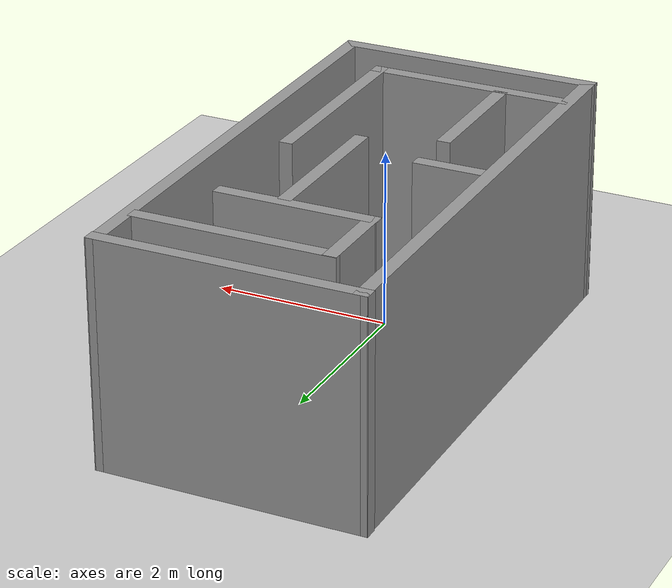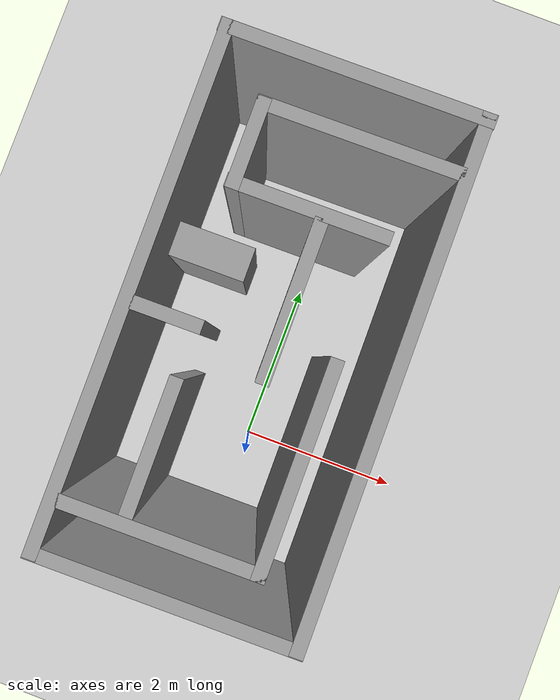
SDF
<sdf version="1.7">
 <world name="default">
  <light name="sun" type="directional">
   <pose>0 0 10 0 -0 0</pose>
   <diffuse>0.8 0.8 0.8 1</diffuse>
   <specular>0.2 0.2 0.2 1</specular>
   <attenuation>
    <range>1000</range>
    <constant>0.9</constant>
    <linear>0.01</linear>
    <quadratic>0.001</quadratic>
   </attenuation>
   <direction>-0.5 0.1 -0.9</direction>
   <spot><inner_angle>0</inner_angle><outer_angle>0</outer_angle><falloff>0</falloff></spot>
  </light>
  <model name="ground_plane">
   <static>1</static>
   <link name="link">
    <collision name="collision">
     <geometry><plane><normal>0 0 1</normal><size>100 100</size></plane></geometry>
     <surface>
      <contact><collide_bitmask>65535</collide_bitmask></contact>
      <friction><ode><mu>100</mu><mu2>50</mu2></ode></friction>
     </surface>
    </collision>
    <visual name="visual">
     <cast_shadows>0</cast_shadows>
     <geometry><plane><normal>0 0 1</normal><size>100 100</size></plane></geometry>
     <material>
      <script><uri>file://media/materials/scripts/gazebo.material</uri><name>Gazebo/Grey</name></script>
     </material>
    </visual>
   </link>
  </model>
  <gravity>0 0 -9.8</gravity>
  <magnetic_field>6e-06 2.3e-05 -4.2e-05</magnetic_field>
  <atmosphere type="adiabatic"/>
  <physics type="ode">
   <max_step_size>0.001</max_step_size>
   <real_time_factor>1</real_time_factor>
   <real_time_update_rate>1000</real_time_update_rate>
  </physics>
  <scene><ambient>0.4 0.4 0.4 1</ambient><background>0.7 0.7 0.7 1</background><shadows>1</shadows></scene>
  <spherical_coordinates>
   <surface_model>EARTH_WGS84</surface_model>
   <latitude_deg>0</latitude_deg>
   <longitude_deg>0</longitude_deg>
   <elevation>0</elevation>
   <heading_deg>0</heading_deg>
  </spherical_coordinates>
  <model name="narrow_test">
   <pose>-0.263257 1.20944 0 0 0 -1.56085</pose>
   <link name="Wall_0">
    <collision name="Wall_0_Collision">
     <geometry><box><size>2.93435 0.15 2.5</size></box></geometry>
     <pose>0 0 1.25 0 -0 0</pose>
    </collision>
    <visual name="Wall_0_Visual">
     <pose>0 0 1.25 0 -0 0</pose>
     <geometry><box><size>2.93435 0.15 2.5</size></box></geometry>
     <material>
      <script><uri>file://media/materials/scripts/gazebo.material</uri><name>Gazebo/Grey</name></script>
      <ambient>1 1 1 1</ambient>
     </material>
     <meta><layer>0</layer></meta>
    </visual>
    <pose>-2.77699 -0 0 0 -0 -1.57033</pose>
   </link>
   <link name="Wall_12">
    <collision name="Wall_12_Collision">
     <geometry><box><size>2.20822 0.15 2.5</size></box></geometry>
     <pose>0 0 1.25 0 -0 0</pose>
    </collision>
    <visual name="Wall_12_Visual">
     <pose>0 0 1.25 0 -0 0</pose>
     <geometry><box><size>2.20822 0.15 2.5</size></box></geometry>
     <material>
      <script><uri>file://media/materials/scripts/gazebo.material</uri><name>Gazebo/Grey</name></script>
      <ambient>1 1 1 1</ambient>
     </material>
     <meta><layer>0</layer></meta>
    </visual>
    <pose>-2.17277 0.24913 0 0 -0 -1.56767</pose>
   </link>
   <link name="Wall_13">
    <collision name="Wall_13_Collision">
     <geometry><box><size>0.982609 0.15 2.5</size></box></geometry>
     <pose>0 0 1.25 0 -0 0</pose>
    </collision>
    <visual name="Wall_13_Visual">
     <pose>0 0 1.25 0 -0 0</pose>
     <geometry><box><size>0.982609 0.15 2.5</size></box></geometry>
     <material>
      <script><uri>file://media/materials/scripts/gazebo.material</uri><name>Gazebo/Grey</name></script>
      <ambient>1 1 1 1</ambient>
     </material>
     <meta><layer>0</layer></meta>
    </visual>
    <pose>-1.74455 -0.779981 0 0 -0 0</pose>
   </link>
   <link name="Wall_14">
    <collision name="Wall_14_Collision">
     <geometry><box><size>1.75 0.15 2.5</size></box></geometry>
     <pose>0 0 1.25 0 -0 0</pose>
    </collision>
    <visual name="Wall_14_Visual">
     <pose>0 0 1.25 0 -0 0</pose>
     <geometry><box><size>1.75 0.15 2.5</size></box></geometry>
     <material>
      <script><uri>file://media/materials/scripts/gazebo.material</uri><name>Gazebo/Grey</name></script>
      <ambient>1 1 1 1</ambient>
     </material>
     <meta><layer>0</layer></meta>
    </visual>
    <pose>-1.32825 0.011323 0 0 -0 1.5708</pose>
   </link>
   <link name="Wall_2">
    <collision name="Wall_2_Collision">
     <geometry><box><size>5.69537 0.15 2.5</size></box></geometry>
     <pose>0 0 1.25 0 -0 0</pose>
    </collision>
    <visual name="Wall_2_Visual">
     <pose>0 0 1.25 0 -0 0</pose>
     <geometry><box><size>5.69537 0.15 2.5</size></box></geometry>
     <material>
      <script><uri>file://media/materials/scripts/gazebo.material</uri><name>Gazebo/Grey</name></script>
      <ambient>1 1 1 1</ambient>
     </material>
     <meta><layer>0</layer></meta>
    </visual>
    <pose>-0.003653 -1.38461 0 0 -0 -0.000409</pose>
   </link>
   <link name="Wall_20">
    <collision name="Wall_20_Collision">
     <geometry><box><size>1.75 0.15 2.5</size></box></geometry>
     <pose>0 0 1.25 0 -0 0</pose>
    </collision>
    <visual name="Wall_20_Visual">
     <pose>0 0 1.25 0 -0 0</pose>
     <geometry><box><size>1.75 0.15 2.5</size></box></geometry>
     <material>
      <script><uri>file://media/materials/scripts/gazebo.material</uri><name>Gazebo/Grey</name></script>
      <ambient>1 1 1 1</ambient>
     </material>
     <meta><layer>0</layer></meta>
    </visual>
    <pose>-0.41049 0.171087 0 0 -0 0</pose>
   </link>
   <link name="Wall_22">
    <collision name="Wall_22_Collision">
     <geometry><box><size>2.31958 0.15 2.5</size></box></geometry>
     <pose>0 0 1.25 0 -0 0</pose>
    </collision>
    <visual name="Wall_22_Visual">
     <pose>0 0 1.25 0 -0 0</pose>
     <geometry><box><size>2.31958 0.15 2.5</size></box></geometry>
     <material>
      <script><uri>file://media/materials/scripts/gazebo.material</uri><name>Gazebo/Grey</name></script>
      <ambient>1 1 1 1</ambient>
     </material>
     <meta><layer>0</layer></meta>
    </visual>
    <pose>1.12647 0.788478 0 0 -0 0</pose>
   </link>
   <link name="Wall_23">
    <collision name="Wall_23_Collision">
     <geometry><box><size>2.25 0.15 2.5</size></box></geometry>
     <pose>0 0 1.25 0 -0 0</pose>
    </collision>
    <visual name="Wall_23_Visual">
     <pose>0 0 1.25 0 -0 0</pose>
     <geometry><box><size>2.25 0.15 2.5</size></box></geometry>
     <material>
      <script><uri>file://media/materials/scripts/gazebo.material</uri><name>Gazebo/Grey</name></script>
      <ambient>1 1 1 1</ambient>
     </material>
     <meta><layer>0</layer></meta>
    </visual>
    <pose>2.21125 -0.261522 0 0 -0 -1.5708</pose>
   </link>
   <link name="Wall_25">
    <collision name="Wall_25_Collision">
     <geometry><box><size>0.75 0.15 2.5</size></box></geometry>
     <pose>0 0 1.25 0 -0 0</pose>
    </collision>
    <visual name="Wall_25_Visual">
     <pose>0 0 1.25 0 -0 0</pose>
     <geometry><box><size>0.75 0.15 2.5</size></box></geometry>
     <material>
      <script><uri>file://media/materials/scripts/gazebo.material</uri><name>Gazebo/Grey</name></script>
      <ambient>1 1 1 1</ambient>
     </material>
     <meta><layer>0</layer></meta>
    </visual>
    <pose>0.137336 -0.946304 0 0 -0 -1.5708</pose>
   </link>
   <link name="Wall_27">
    <collision name="Wall_27_Collision">
     <geometry><box><size>1.5 0.15 2.5</size></box></geometry>
     <pose>0 0 1.25 0 -0 0</pose>
    </collision>
    <visual name="Wall_27_Visual">
     <pose>0 0 1.25 0 -0 0</pose>
     <geometry><box><size>1.5 0.15 2.5</size></box></geometry>
     <material>
      <script><uri>file://media/materials/scripts/gazebo.material</uri><name>Gazebo/Grey</name></script>
      <ambient>1 1 1 1</ambient>
     </material>
     <meta><layer>0</layer></meta>
    </visual>
    <pose>1.42755 -0.637609 0 0 -0 3.14159</pose>
   </link>
   <link name="Wall_3">
    <collision name="Wall_3_Collision">
     <geometry><box><size>2.92679 0.15 2.5</size></box></geometry>
     <pose>0 0 1.25 0 -0 0</pose>
    </collision>
    <visual name="Wall_3_Visual">
     <pose>0 0 1.25 0 -0 0</pose>
     <geometry><box><size>2.92679 0.15 2.5</size></box></geometry>
     <material>
      <script><uri>file://media/materials/scripts/gazebo.material</uri><name>Gazebo/Grey</name></script>
      <ambient>1 1 1 1</ambient>
     </material>
     <meta><layer>0</layer></meta>
    </visual>
    <pose>2.77707 0.002646 0 0 -0 1.57127</pose>
   </link>
   <link name="Wall_4">
    <collision name="Wall_4_Collision">
     <geometry><box><size>5.69538 0.15 2.5</size></box></geometry>
     <pose>0 0 1.25 0 -0 0</pose>
    </collision>
    <visual name="Wall_4_Visual">
     <pose>0 0 1.25 0 -0 0</pose>
     <geometry><box><size>5.69538 0.15 2.5</size></box></geometry>
     <material>
      <script><uri>file://media/materials/scripts/gazebo.material</uri><name>Gazebo/Grey</name></script>
      <ambient>1 1 1 1</ambient>
     </material>
     <meta><layer>0</layer></meta>
    </visual>
    <pose>-0.004957 1.38661 0 0 -0 -3.13999</pose>
   </link>
   <static>1</static>
  </model>
  <model name="unit_box">
   <pose>-1.12844 1.91587 0.789036 -0 -2e-06 0.009838</pose>
   <link name="link">
    <inertial>
     <mass>1</mass>
     <inertia>
      <ixx>0.166667</ixx>
      <ixy>0</ixy>
      <ixz>0</ixz>
      <iyy>0.166667</iyy>
      <iyz>0</iyz>
      <izz>0.166667</izz>
     </inertia>
    </inertial>
    <collision name="collision"><geometry><box><size>0.902267 0.406738 1.57807</size></box></geometry></collision>
    <visual name="visual">
     <geometry><box><size>0.902267 0.406738 1.57807</size></box></geometry>
     <material>
      <script><name>Gazebo/Grey</name><uri>file://media/materials/scripts/gazebo.material</uri></script>
     </material>
    </visual>
   </link>
  </model>
 </world>
</sdf>
